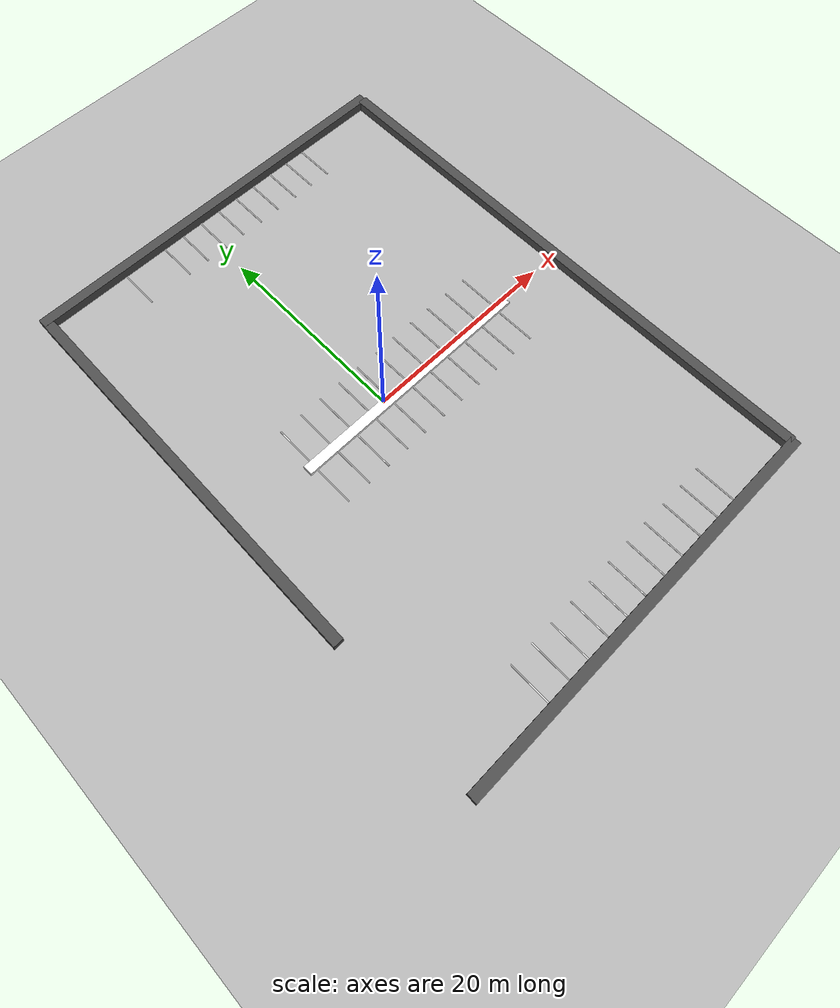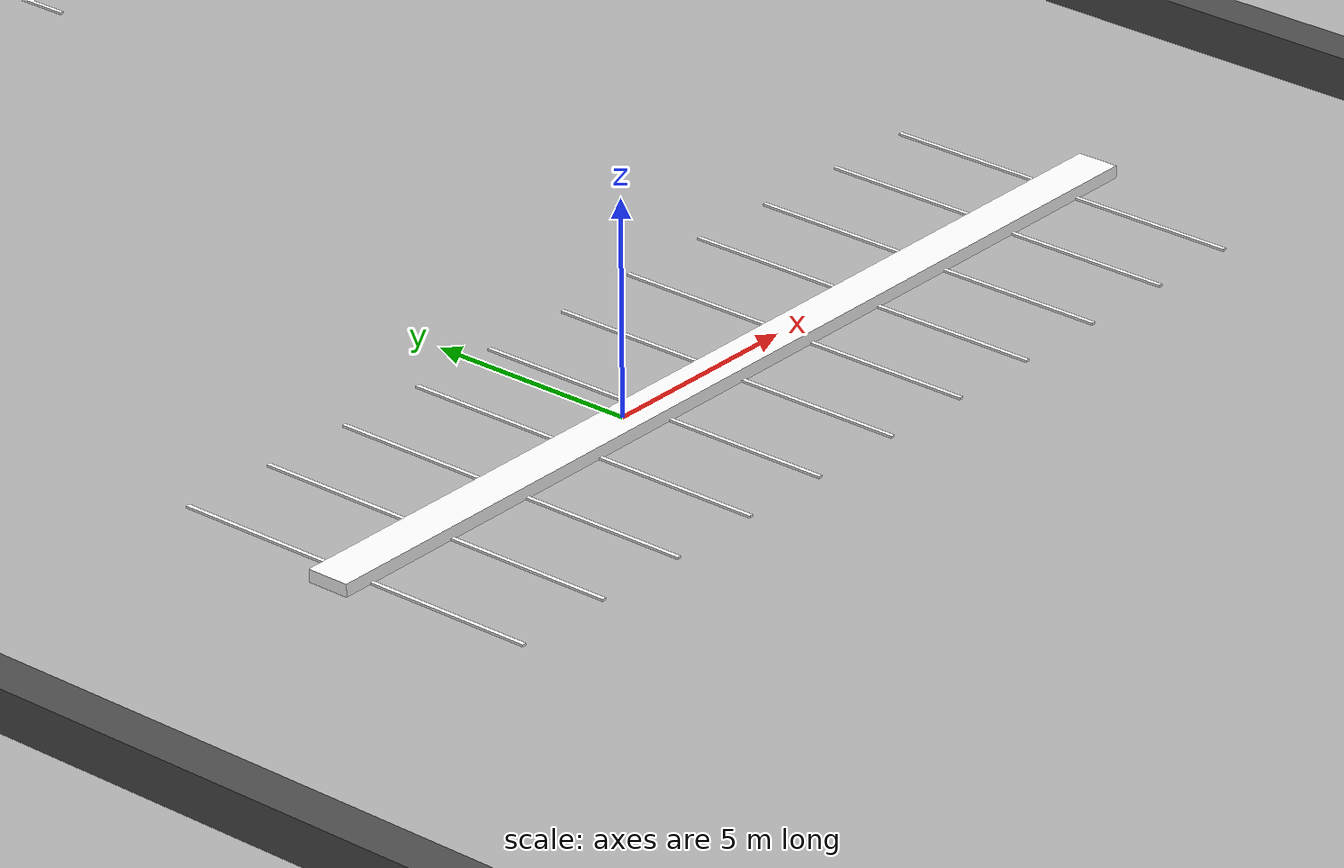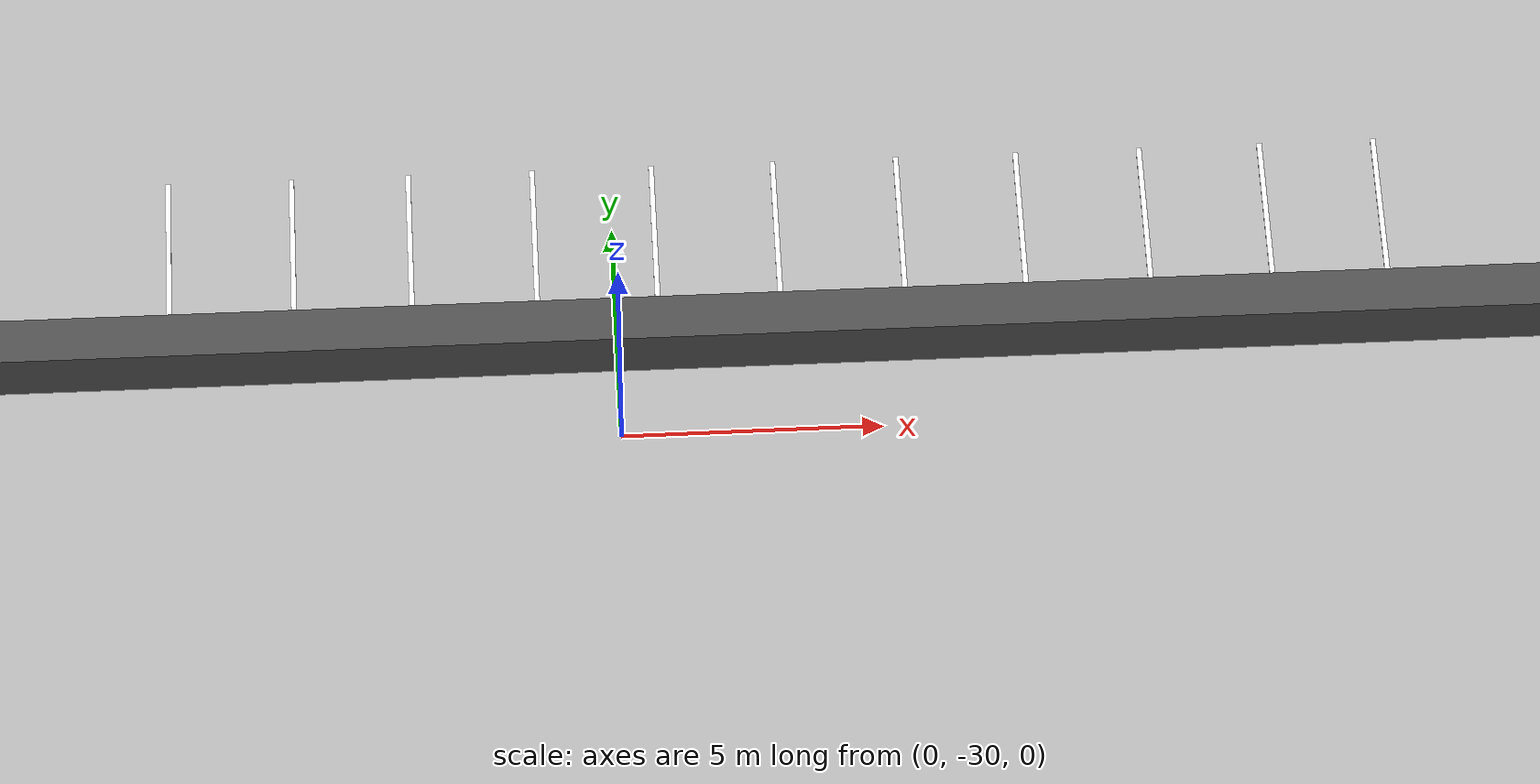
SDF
<?xml version="1.0" ?>
<sdf version="1.6">
  <model name="parking_model">
    <static>true</static> <!-- Static, since it represents a non-moving parking lot -->

    <link name="ground_plane">
      <pose>0 0 0 0 0 0</pose>
      <collision name="ground_plane_collision">
        <geometry>
          <plane>
            <normal>0 0 1</normal>
            <size>100 100</size>
          </plane>
        </geometry>
      </collision>
      <visual name="ground_plane_visual">
        <geometry>
          <plane>
            <normal>0 0 1</normal>
            <size>100 100</size>
          </plane>
        </geometry>
        <material>
          <ambient>0.4 0.4 0.4 1</ambient>
          <diffuse>0.7 0.7 0.7 1</diffuse>
        </material>
      </visual>
    </link>

    <!-- Box Models from parking_1.sdf -->
    <model name="box">
      <pose>2.7544 27.4405 0.5 0 0 0</pose>
      <link name="box_link">
        <collision name="box_collision">
          <geometry>
            <box>
              <size>40.5 1 1</size>
            </box>
          </geometry>
        </collision>
        <visual name="box_visual">
          <geometry>
            <box>
              <size>40.5 1 1</size>
            </box>
          </geometry>
          <material>
            <ambient>0.3 0.3 0.3 1</ambient>
            <diffuse>0.3 0.3 0.3 1</diffuse>
            <specular>1 1 1 1</specular>
          </material>
        </visual>
      </link>
    </model>

    <model name="box_1">
      <pose>2.55323 -27.9246 0.5 0 0 0</pose>
      <link name="box_1_link">
        <collision name="box_1_collision">
          <geometry>
            <box>
              <size>40.5 1 1</size>
            </box>
          </geometry>
        </collision>
        <visual name="box_1_visual">
          <geometry>
            <box>
              <size>40.5 1 1</size>
            </box>
          </geometry>
          <material>
            <ambient>0.3 0.3 0.3 1</ambient>
            <diffuse>0.3 0.3 0.3 1</diffuse>
            <specular>1 1 1 1</specular>
          </material>
        </visual>
      </link>
    </model>

    <model name="box_2">
      <pose>-17.1074 6.93047 0.5 0 0 -1.57509</pose>
      <link name="box_2_link">
        <collision name="box_2_collision">
          <geometry>
            <box>
              <size>40 1 1</size>
            </box>
          </geometry>
        </collision>
        <visual name="box_2_visual">
          <geometry>
            <box>
              <size>40 1 1</size>
            </box>
          </geometry>
          <material>
            <ambient>0.3 0.3 0.3 1</ambient>
            <diffuse>0.3 0.3 0.3 1</diffuse>
            <specular>1 1 1 1</specular>
          </material>
        </visual>
      </link>
    </model>

    <model name="box_3">
      <pose>22.5793 -0.265861 0.5 0 0 -1.57509</pose>
      <link name="box_3_link">
        <collision name="box_3_collision">
          <geometry>
            <box>
              <size>55 1 1</size>
            </box>
          </geometry>
        </collision>
        <visual name="box_3_visual">
          <geometry>
            <box>
              <size>55 1 1</size>
            </box>
          </geometry>
          <material>
            <ambient>0.3 0.3 0.3 1</ambient>
            <diffuse>0.3 0.3 0.3 1</diffuse>
            <specular>1 1 1 1</specular>
          </material>
        </visual>
      </link>
    </model>

    <include>
      <uri>/home/nat/ros2_parking/src/gz_proj/final_models/final_parking_lot/park_line</uri>
      <name>parking_line_1</name>
      <pose>-3.98234 24.9546 0 0 -0 0</pose>
    </include>
    <include>
      <uri>/home/nat/ros2_parking/src/gz_proj/final_models/final_parking_lot/park_line</uri>
      <name>parking_line_2</name>
      <pose>-1.73665 24.9465 0 0 -0 0</pose>
    </include>
    <include>
      <uri>/home/nat/ros2_parking/src/gz_proj/final_models/final_parking_lot/park_line</uri>
      <name>parking_line_3</name>
      <pose>0.482907 24.9396 0 0 -0 0</pose>
    </include>
    <include>
      <uri>/home/nat/ros2_parking/src/gz_proj/final_models/final_parking_lot/park_line</uri>
      <name>parking_line_4</name>
      <pose>2.71869 24.948 0 0 -0 0</pose>
    </include>
    <include>
      <uri>/home/nat/ros2_parking/src/gz_proj/final_models/final_parking_lot/park_line</uri>
      <name>parking_line_5</name>
      <pose>4.98036 24.95 0 0 -0 0</pose>
    </include>
    <include>
      <uri>/home/nat/ros2_parking/src/gz_proj/final_models/final_parking_lot/park_line</uri>
      <name>parking_line_6</name>
      <pose>-8.55096 24.9386 0 0 -0 0</pose>
    </include>
    <include>
      <uri>/home/nat/ros2_parking/src/gz_proj/final_models/final_parking_lot/park_line</uri>
      <name>parking_line_7</name>
      <pose>7.20404 24.9505 0 0 -0 0</pose>
    </include>
    <include>
      <uri>/home/nat/ros2_parking/src/gz_proj/final_models/final_parking_lot/park_line</uri>
      <name>parking_line_8</name>
      <pose>9.46097 24.9375 0 0 -0 0</pose>
    </include>
    <model name='box_0'>
      <pose>3.1681 -0.304853 0.018131 0 -0 0</pose>
      <link name='box_link'>
        <inertial>
          <inertia>
            <ixx>0.16666</ixx>
            <ixy>0</ixy>
            <ixz>0</ixz>
            <iyy>0.16666</iyy>
            <iyz>0</iyz>
            <izz>0.16666</izz>
          </inertia>
          <mass>1</mass>
          <pose>0 0 0 0 -0 0</pose>
        </inertial>
        <collision name='box_collision'>
          <geometry>
            <box>
              <size>25 1 0.5</size>
            </box>
          </geometry>
          <surface>
            <friction>
              <ode/>
            </friction>
            <bounce/>
            <contact/>
          </surface>
        </collision>
        <visual name='box_visual'>
          <geometry>
            <box>
              <size>25 1 0.5</size>
            </box>
          </geometry>
          <material>
            <ambient>0.3 0.3 0.3 1</ambient>
            <diffuse>1 1 1 1</diffuse>
            <specular>1 1 1 1</specular>
          </material>
        </visual>
        <pose>0 0 0 0 -0 0</pose>
        <enable_wind>false</enable_wind>
      </link>
      <static>false</static>
      <self_collide>false</self_collide>
    </model>
    <include>
      <uri>/home/nat/ros2_parking/src/gz_proj/final_models/final_parking_lot/park_line</uri>
      <name>parking_line_9</name>
      <pose>0.623859 2.2038 0 0 -0 0</pose>
    </include>
    <include>
      <uri>/home/nat/ros2_parking/src/gz_proj/final_models/final_parking_lot/park_line</uri>
      <name>parking_line_10</name>
      <pose>2.94336 2.18615 0 0 -0 0</pose>
    </include>
    <include>
      <uri>/home/nat/ros2_parking/src/gz_proj/final_models/final_parking_lot/park_line</uri>
      <name>parking_line_11</name>
      <pose>5.1725 2.25634 0.00639 0 -0 0</pose>
    </include>
    <include>
      <uri>/home/nat/ros2_parking/src/gz_proj/final_models/final_parking_lot/park_line</uri>
      <name>parking_line_12</name>
      <pose>7.49458 2.24335 0 0 -0 0</pose>
    </include>
    <include>
      <uri>/home/nat/ros2_parking/src/gz_proj/final_models/final_parking_lot/park_line</uri>
      <name>parking_line_13</name>
      <pose>9.6991 2.23042 0 0 -0 0</pose>
    </include>
    <include>
      <uri>/home/nat/ros2_parking/src/gz_proj/final_models/final_parking_lot/park_line</uri>
      <name>parking_line_14</name>
      <pose>12.1072 2.21746 0 0 -0 0</pose>
    </include>
    <include>
      <uri>/home/nat/ros2_parking/src/gz_proj/final_models/final_parking_lot/park_line</uri>
      <name>parking_line_15</name>
      <pose>14.3861 2.206 0 0 -0 0</pose>
    </include>
    <include>
      <uri>/home/nat/ros2_parking/src/gz_proj/final_models/final_parking_lot/park_line</uri>
      <name>parking_line_16</name>
      <pose>-1.62611 2.2114 0 0 -0 0</pose>
    </include>
    <include>
      <uri>/home/nat/ros2_parking/src/gz_proj/final_models/final_parking_lot/park_line</uri>
      <name>parking_line_17</name>
      <pose>-3.9054 2.1943 0 0 -0 0</pose>
    </include>
    <include>
      <uri>/home/nat/ros2_parking/src/gz_proj/final_models/final_parking_lot/park_line</uri>
      <name>parking_line_18</name>
      <pose>-6.1873 2.19921 0 0 -0 0</pose>
    </include>
    <include>
      <uri>/home/nat/ros2_parking/src/gz_proj/final_models/final_parking_lot/park_line</uri>
      <name>parking_line_19</name>
      <pose>-8.54946 2.21806 0 0 -0 0</pose>
    </include>
    <include>
      <uri>/home/nat/ros2_parking/src/gz_proj/final_models/final_parking_lot/park_line</uri>
      <name>parking_line_20</name>
      <pose>11.6148 24.9456 0 0 -0 0</pose>
    </include>
    <include>
      <uri>/home/nat/ros2_parking/src/gz_proj/final_models/final_parking_lot/park_line</uri>
      <name>parking_line_21</name>
      <pose>13.7867 24.9389 0 0 -0 0</pose>
    </include>
    <include>
      <uri>/home/nat/ros2_parking/src/gz_proj/final_models/final_parking_lot/park_line</uri>
      <name>parking_line_22</name>
      <pose>-8.59087 -2.80556 0 0 -0 0</pose>
    </include>
    <include>
      <uri>/home/nat/ros2_parking/src/gz_proj/final_models/final_parking_lot/park_line</uri>
      <name>parking_line_23</name>
      <pose>-6.18728 -25.4178 0 0 -0 0</pose>
    </include>
    <include>
      <uri>/home/nat/ros2_parking/src/gz_proj/final_models/final_parking_lot/park_line</uri>
      <name>parking_line_24</name>
      <pose>-3.90911 -2.81124 0 0 -0 0</pose>
    </include>
    <include>
      <uri>/home/nat/ros2_parking/src/gz_proj/final_models/final_parking_lot/park_line</uri>
      <name>parking_line_25</name>
      <pose>-1.64075 -2.78947 0 0 -0 0</pose>
    </include>
    <include>
      <uri>/home/nat/ros2_parking/src/gz_proj/final_models/final_parking_lot/park_line</uri>
      <name>parking_line_26</name>
      <pose>0.571282 -2.78826 0 0 -0 0</pose>
    </include>
    <include>
      <uri>/home/nat/ros2_parking/src/gz_proj/final_models/final_parking_lot/park_line</uri>
      <name>parking_line_27</name>
      <pose>2.90249 -2.79341 0 0 -0 0</pose>
    </include>
    <include>
      <uri>/home/nat/ros2_parking/src/gz_proj/final_models/final_parking_lot/park_line</uri>
      <name>parking_line_28</name>
      <pose>5.15332 -2.79715 0 0 -0 0</pose>
    </include>
    <include>
      <uri>/home/nat/ros2_parking/src/gz_proj/final_models/final_parking_lot/park_line</uri>
      <name>parking_line_29</name>
      <pose>7.38575 -2.79431 0 0 -0 0</pose>
    </include>
    <include>
      <uri>/home/nat/ros2_parking/src/gz_proj/final_models/final_parking_lot/park_line</uri>
      <name>parking_line_30</name>
      <pose>9.64515 -2.79826 0 0 -0 0</pose>
    </include>
    <include>
      <uri>/home/nat/ros2_parking/src/gz_proj/final_models/final_parking_lot/park_line</uri>
      <name>parking_line_31</name>
      <pose>11.9859 -2.80169 0 0 -0 0</pose>
    </include>
    <include>
      <uri>/home/nat/ros2_parking/src/gz_proj/final_models/final_parking_lot/park_line</uri>
      <name>parking_line_32</name>
      <pose>14.2605 -2.80072 0 0 -0 0</pose>
    </include>
    <include>
      <uri>/home/nat/ros2_parking/src/gz_proj/final_models/final_parking_lot/park_line</uri>
      <name>parking_line_33</name>
      <pose>-8.58724 -25.4181 0 0 -0 0</pose>
    </include>
    <include>
      <uri>/home/nat/ros2_parking/src/gz_proj/final_models/final_parking_lot/park_line</uri>
      <name>parking_line_34</name>
      <pose>-6.1889 -2.7994 0 0 -0 0</pose>
    </include>
    <include>
      <uri>/home/nat/ros2_parking/src/gz_proj/final_models/final_parking_lot/park_line</uri>
      <name>parking_line_35</name>
      <pose>-3.91731 -25.4271 0 0 -0 0</pose>
    </include>
    <include>
      <uri>/home/nat/ros2_parking/src/gz_proj/final_models/final_parking_lot/park_line</uri>
      <name>parking_line_36</name>
      <pose>-1.50304 -25.4212 0 0 -0 0</pose>
    </include>
    <include>
      <uri>/home/nat/ros2_parking/src/gz_proj/final_models/final_parking_lot/park_line</uri>
      <name>parking_line_37</name>
      <pose>0.820859 -25.4134 0 0 -0 0</pose>
    </include>
    <include>
      <uri>/home/nat/ros2_parking/src/gz_proj/final_models/final_parking_lot/park_line</uri>
      <name>parking_line_38</name>
      <pose>3.18759 -25.4205 0 0 -0 0</pose>
    </include>
    <include>
      <uri>/home/nat/ros2_parking/src/gz_proj/final_models/final_parking_lot/park_line</uri>
      <name>parking_line_39</name>
      <pose>5.59418 -25.42 0 0 -0 0</pose>
    </include>
    <include>
      <uri>/home/nat/ros2_parking/src/gz_proj/final_models/final_parking_lot/park_line</uri>
      <name>parking_line_40</name>
      <pose>7.93244 -25.4262 0 0 -0 0</pose>
    </include>
    <include>
      <uri>/home/nat/ros2_parking/src/gz_proj/final_models/final_parking_lot/park_line</uri>
      <name>parking_line_41</name>
      <pose>10.3479 -25.4209 0 0 -0 0</pose>
    </include>
    <include>
      <uri>/home/nat/ros2_parking/src/gz_proj/final_models/final_parking_lot/park_line</uri>
      <name>parking_line_42</name>
      <pose>12.7041 -25.4262 0 0 -0 0</pose>
    </include>
    <include>
      <uri>/home/nat/ros2_parking/src/gz_proj/final_models/final_parking_lot/park_line</uri>
      <name>parking_line_43</name>
      <pose>14.9309 -25.4037 0 0 -0 0</pose>
    </include>

  </model>
</sdf>

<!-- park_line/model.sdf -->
<sdf version="1.6">
  <model name="parking_line">
    <static>true</static>
    <link name="link">
      <visual name="visual">
        <geometry>
          <box>
            <size>0.1 4 0.05</size>   <!-- Adjust size to fit the parking lot -->
          </box>
        </geometry>
        <material>
          <script>
            <uri>/home/nat/gazebo_world/worlds/park_line/materials/scripts</uri>
            <name>ParkingLineMaterial</name>
            <uri>/home/nat/gazebo_world/worlds/park_line/materials/textures</uri>
          </script>
          <ambient> 1 1 1 1  </ambient>
          <diffuse> 1 1 1 1  </diffuse>
          <specular> 0.5 0.5 0.5 1 </specular>
          <emissive> 0 0 0 0 </emissive>
        </material>
      </visual>
      <collision name="collision">
        <geometry>
          <box>
            <size>0.1 4 0.05</size>
          </box>
        </geometry>
      </collision>
    </link>
  </model>
</sdf>
